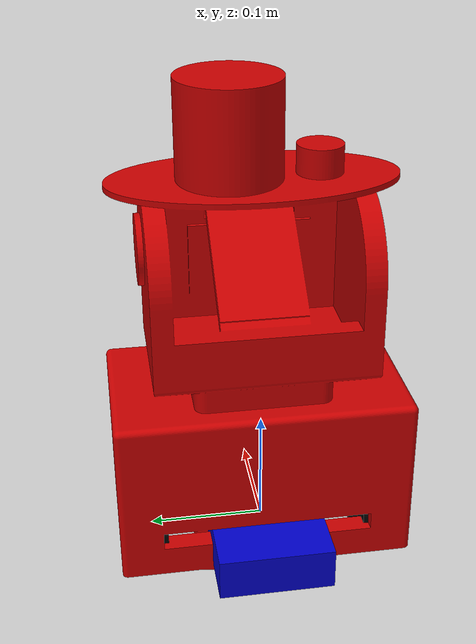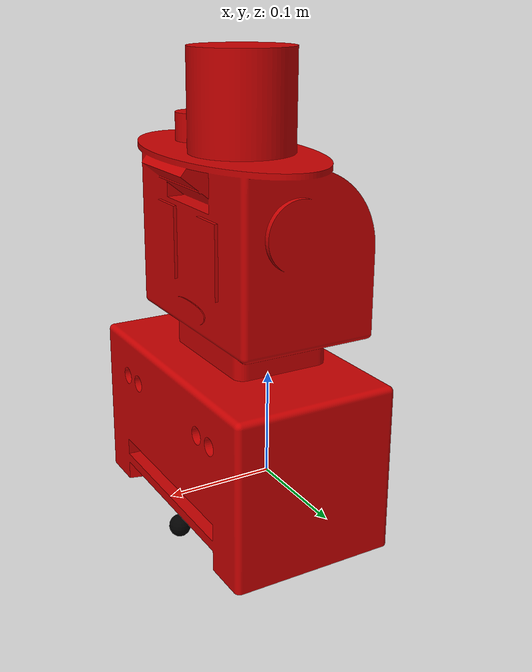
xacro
<?xml version="1.0"?>
<robot name="r2" xmlns:xacro="http://ros.org/wiki/xacro">
    <xacro:property name="body_length" value="0.150" />
    <xacro:property name="body_width" value="0.260" />
    <xacro:property name="body_height" value="0.350" />
    <xacro:property name="body_ground_spacing" value="0.010" />

    <xacro:property name="wheel_length" value="0.014" />
    <xacro:property name="wheel_radius" value="0.0375" />
    <xacro:property name="wheel_separation" value="0.190" />
    <xacro:property name="wheel_effort_max" value="10000" />
    <xacro:property name="wheel_velocity_max" value="10000" />
    <xacro:property name="wheel_to_body_x" value="0.030" />

    <xacro:property name="free_wheel_to_body_x" value="${body_length/2 - 0.012}" />

    <xacro:property name="imu_size" value="0.050"/>
    <xacro:property name="imu_to_base_x" value="0" />
    <xacro:property name="imu_to_base_y" value="0" />
    <xacro:property name="imu_to_base_z" value="${0.145 - wheel_radius}" />

    <xacro:property name="lidar_height" value="0.037"/>
    <xacro:property name="lidar_width" value="0.100" />
    <xacro:property name="lidar_to_base_x" value="-0.04" />
    <xacro:property name="lidar_to_base_y" value="0.0" />
    <xacro:property name="lidar_to_base_z" value="${0.040 - wheel_radius}" />

    <xacro:include filename="$(find sd_description)/urdf/materials.xacro" />

    <!-- Base link is at the center between the wheels axe -->
    <link name="base_link"/>

    <!-- Body is the robot structure -->
    <link name="body_link">
        <visual>
            <geometry>
				<mesh filename="package://sd_description/meshes/r2_base.stl" scale="0.001 0.001 0.001"/>
            </geometry>
            <material name="red"/>
        </visual>
        <collision>
            <geometry>
				<mesh filename="package://sd_description/meshes/r2_base.stl" scale="0.001 0.001 0.001"/>
            </geometry>
        </collision>
        <inertial>
			<mass value="4.2"/>
			<inertia ixx="3e-2" ixy="0.0" ixz="0.0" iyy="3e-2" iyz="0.0" izz="4e-2"/>
            <origin xyz="0 0 0" rpy="0 0 0"/>
        </inertial>
    </link>

    <joint name="body_to_base" type="fixed">
        <parent link="base_link"/>
        <child link="body_link"/>
        <origin xyz="${wheel_to_body_x} 0 ${- wheel_radius + body_ground_spacing}" rpy="0 0 0"/>
    </joint>

    <xacro:macro name="wheel_macro" params="prefix reflect">
        <link name="${prefix}_wheel_link">
            <visual>
                <geometry>
                    <cylinder length="${wheel_length}" radius="${wheel_radius}"/>
                </geometry>
                <material name="black"/>
            </visual>
            <collision>
                <geometry>
                    <cylinder length="${wheel_length}" radius="${wheel_radius}"/>
                </geometry>
            </collision>
	        <inertial>
				<mass value="0.3"/>
				<inertia ixx="2e-4" ixy="0.0" ixz="0.0" iyy="2e-4" iyz="0.0" izz="2.5e-4"/>
	        </inertial>
        </link>

        <joint name="${prefix}_wheel_to_base" type="continuous">
            <parent link="base_link"/>
            <child link="${prefix}_wheel_link"/>
            <origin xyz="0 ${wheel_separation / 2 * reflect} 0" rpy="${-pi / 2} 0 0"/>
            <limit effort="${wheel_effort_max}" velocity="${wheel_velocity_max}"/>
            <axis xyz="0 0 1"/>
        </joint>

		<transmission name="${prefix}_wheel_to_base_transmission">
		    <type>transmission_interface/SimpleTransmission</type>
		    <joint name="${prefix}_wheel_to_base">
				<hardwareInterface>hardware_interface/VelocityJointInterface</hardwareInterface>
		    </joint>
		    <actuator name="${prefix}_wheel_to_base_actuator">
				<hardwareInterface>hardware_interface/VelocityJointInterface</hardwareInterface>
				<mechanicalReduction>7</mechanicalReduction>
		    </actuator>
		</transmission>
    </xacro:macro>

    <wheel_macro prefix="left" reflect="1"/>
    <wheel_macro prefix="right" reflect="-1"/>

    <link name="free_wheel_link">
        <visual>
            <geometry>
                <sphere radius="${body_ground_spacing}"/>
            </geometry>
            <material name="black"/>
        </visual>
        <collision>
            <geometry>
                <sphere radius="${body_ground_spacing}"/>
            </geometry>
        </collision>
        <inertial>
			<mass value="0.001"/>
			<inertia ixx="1e-5" ixy="0.0" ixz="0.0" iyy="1e-5" iyz="0.0" izz="1e-5"/>
        </inertial>
    </link>

    <joint name="free_wheel_to_body" type="fixed">
        <parent link="body_link"/>
        <child link="free_wheel_link"/>
        <origin xyz="${free_wheel_to_body_x} 0 ${-body_ground_spacing/2}" rpy="0 0 0"/>
    </joint>

    <!-- Sensors -->
    <link name="imu_link">
        <visual>
            <geometry>
                <box size="${imu_size} ${imu_size} ${imu_size}"/>
            </geometry>
            <material name="blue"/>
        </visual>
    </link>

    <joint name="imu_to_body" type="fixed">
        <parent link="base_link"/>
        <child link="imu_link"/>
        <origin xyz="${imu_to_base_x} ${imu_to_base_y} ${imu_to_base_z}" rpy="${pi} 0 0"/>
    </joint>

    <link name="lidar_link">
        <visual>
            <geometry>
                <box size="${lidar_width} ${lidar_width} ${lidar_height}"/>
            </geometry>
            <material name="blue"/>
        </visual>
    </link>

    <joint name="lidar_to_body" type="fixed">
        <parent link="base_link"/>
        <child link="lidar_link"/>
        <origin xyz="${lidar_to_base_x} ${lidar_to_base_y} ${lidar_to_base_y}" rpy="0 ${pi} 0"/>
    </joint>

    <xacro:macro name="sonar_macro" params="name y">
        <link name="sonar_${name}_link">
            <visual>
                <geometry>
                    <mesh filename="package://sd_description/meshes/HC-SR04.stl" scale="0.001 0.001 0.001"/>
                </geometry>
                <material name="white"/>
            </visual>
        </link>

        <joint name="sonar_${name}_to_body" type="fixed">
            <parent link="body_link"/>
            <child link="sonar_${name}_link"/>
            <origin xyz="${body_length / 2 - sonar_length / 2} ${y} ${sonar_z}" rpy="0 0 0"/>
        </joint>
    </xacro:macro>

    <!--sonar_macro name="left" y="${sonar_y}"/-->
    <!--sonar_macro name="right" y="${-sonar_y}"/-->
</robot>

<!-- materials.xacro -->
<robot>
  <!-- Colors used by rviz -->
  <material name="black">
    <color rgba="0.0 0.0 0.0 1.0"/>
  </material>

  <material name="blue">
    <color rgba="0.0 0.0 0.8 1.0"/>
  </material>

  <material name="green">
    <color rgba="0.0 0.8 0.0 1.0"/>
  </material>

  <material name="grey">
    <color rgba="0.2 0.2 0.2 1.0"/>
  </material>

  <material name="orange">
    <color rgba="${255/255} ${108/255} ${10/255} 1.0"/>
  </material>

  <material name="brown">
    <color rgba="${222/255} ${207/255} ${195/255} 1.0"/>
  </material>

  <material name="red">
    <color rgba="0.8 0.0 0.0 1.0"/>
  </material>

  <material name="white">
    <color rgba="1.0 1.0 1.0 1.0"/>
  </material>

</robot>
